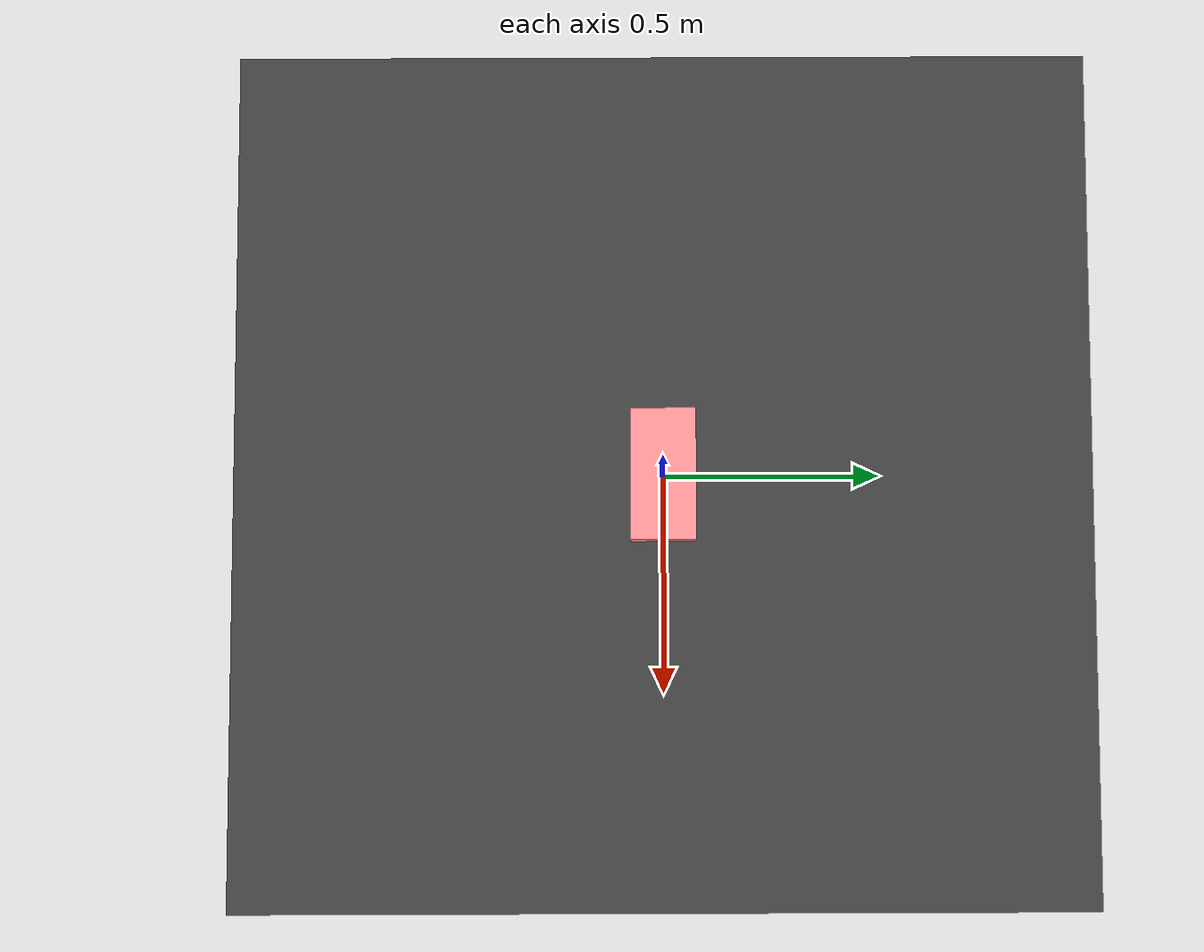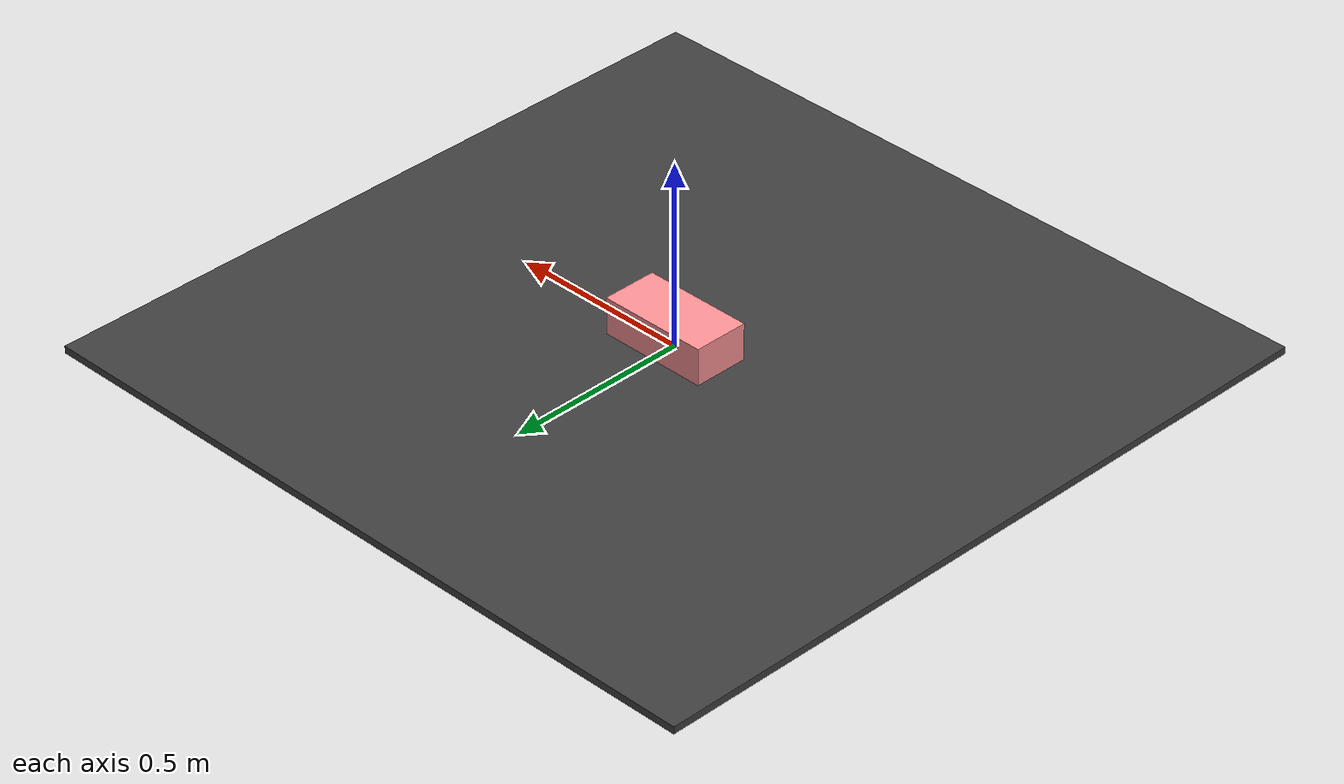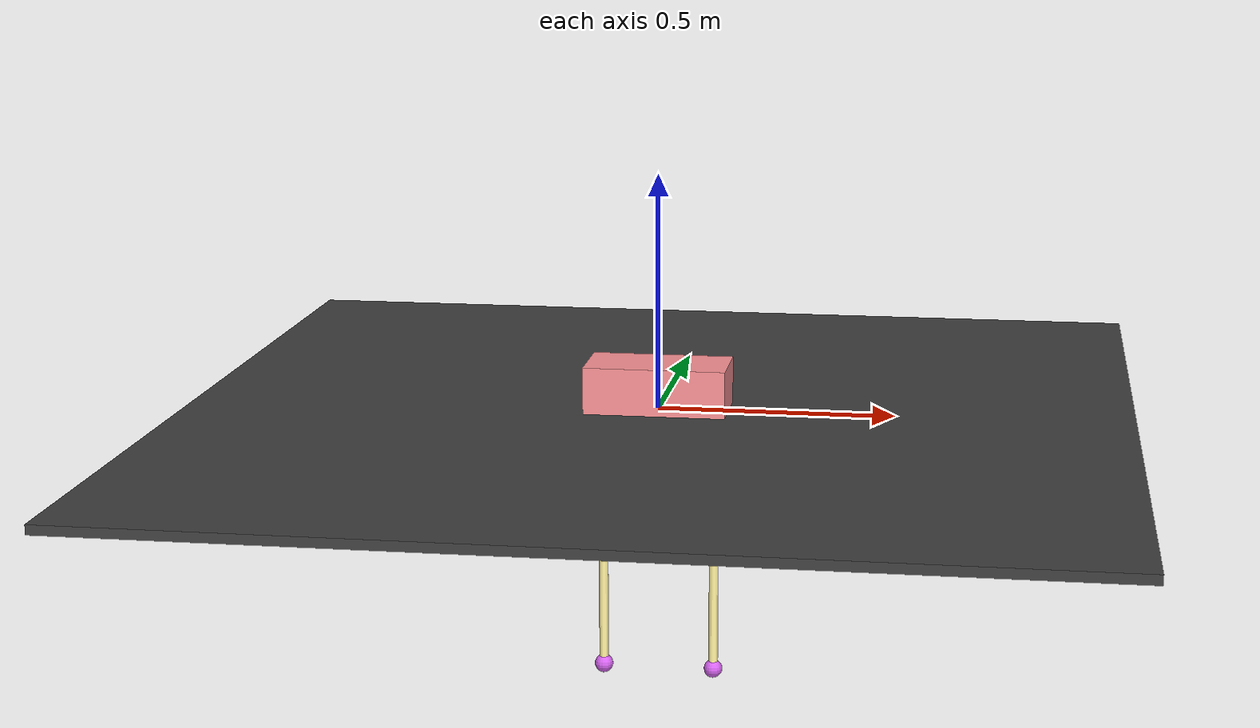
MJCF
<!-- 3D hermes in 2d plane -->
<mujoco model="Hermes">
    <compiler angle="radian" coordinate="local" inertiafromgeom="auto"/>

    <option gravity="0 0 -9.8" timestep="0.001" collision="predefined" cone="elliptic" o_solref="0.002 1">
        <flag override="enable"/>
    </option>

    <visual>
    </visual>

    <asset>
        <texture type="skybox" builtin="gradient" width="100" height="100" rgb1="0.4 0.6 0.8" rgb2="0 0 0"/>
        <texture type="2d" name="plane" builtin="checker" rgb1="0.2 0.2 0.2" rgb2="0.3 0.3 0.3" width="100"
                 height="100"/>
        <material name="plane" reflectance="0.0" texture="plane" texrepeat="1 1" texuniform="true"/>
    </asset>

    <worldbody>
        <light mode="trackcom" pos="0 0 5" dir="0 0 -1"/>
        <light directional="true" pos="0 0 10" dir="0 0 -1" diffuse="0.2 0.2 0.2" specular="0 0 0"/>
        <!--geom name="floor" pos="0 0 0" size="50 50 50" type="plane" material="plane" condim="3" conaffinity="15"/-->
        <geom name="floor" pos="0 0 0" size="50 50 50" type="plane" rgba="1 1 1 0" condim="3" conaffinity="15"/>

        <body name="torso" pos="0 0 0">
            <camera name="track" pos="0 -3 0" zaxis="0 -1 0" mode="track"/>
            <geom type="box" size="0.15 0.075 0.1" rgba="0.992 0.576 0.588 1" mass="5" pos="0 0 0"/>
            <joint name="root_x" type="slide" axis="1 0 0" pos="0 0 0" limited="false" damping="0" armature="0"
                   stiffness="0"/>
            <joint name="root_z" type="slide" axis="0 0 1" pos="0 0 0" limited="false" damping="0" armature="0"
                   stiffness="0"/>
            <joint name="root_rotation" type="hinge" axis="0 1 0" pos="0 0 0" limited="false" damping="0" armature="0"
                   stiffness="0"/>

            <!-- left leg -->
            <body name="left1" pos="-0.12 0 0">
                <geom type="cylinder" fromto="-0.015 0 0 0.015 0 0" size="0.07" mass="0.2" rgba="0.686 1 0.616 1"/>
                <joint name="hip1_l" type="hinge" axis="0 1 0" pos="0 0 0" limited="false" damping="0.1" stiffness="0"
                       armature="0.0001"/>
                <body name="left2" pos="0 0 0">
                    <geom type="capsule" fromto="0 0 0 0 0 -0.3" size="0.015" mass="0.05" rgba="0.686 1 0.616 1"/>
                    <joint name="hip2_l" type="hinge" axis="1 0 0" pos="0 0 0" limited="false" damping="0.1"
                           stiffness="0" armature="0.0001"/>
                    <body name="left3" pos="0 0 -0.3">
                        <geom type="capsule" fromto="0 0 0 0 0 -0.28" size="0.01" mass="0.03" rgba="1 0.945 0.620 1"/>
                        <joint name="knee_l" type="hinge" axis="1 0 0" pos="0 0 0" limited="false" damping="0.1"
                               stiffness="0" armature="0.0001"/>
                        <body name="left4" pos="0 0 -0.28">
                            <geom type="sphere" pos="0 0 0" size="0.02" mass="0.01" rgba="0.839 0.388 0.937 1"
                                  friction="100 100 100" name="foot_l"/>
                        </body>
                    </body>
                </body>
            </body>

            <!-- right leg -->
            <body name="right1" pos="0.12 0 0">
                <geom type="cylinder" fromto="-0.015 0 0 0.015 0 0" size="0.07" mass="0.2" rgba="0.686 1 0.616 1"/>
                <joint name="hip1_r" type="hinge" axis="0 1 0" pos="0 0 0" limited="false" damping="0.1" stiffness="0"
                       armature="0.0001"/>
                <body name="right2" pos="0 0 0">
                    <geom type="capsule" fromto="0 0 0 0 0 -0.3" size="0.015" mass="0.05" rgba="0.686 1 0.616 1"/>
                    <joint name="hip2_r" type="hinge" axis="1 0 0" pos="0 0 0" limited="false" damping="0.1"
                           stiffness="0" armature="0.0001"/>
                    <body name="right3" pos="0 0 -0.3">
                        <geom type="capsule" fromto="0 0 0 0 0 -0.28" size="0.01" mass="0.03" rgba="1 0.945 0.620 1"/>
                        <joint name="knee_r" type="hinge" axis="1 0 0" pos="0 0 0" limited="false" damping="0.1"
                               stiffness="0" armature="0.0001"/>
                        <body name="right4" pos="0 0 -0.28">
                            <geom type="sphere" pos="0 0 0" size="0.02" mass="0.01" rgba="0.839 0.388 0.937 1"
                                  friction="100 100 100" name="foot_r"/>
                        </body>
                    </body>
                </body>
            </body>

        </body>

        <body name="seesaw" pos="0 0 -0.01">
            <geom type="box" size="1 1 0.01" mass="1" material="plane" condim="3" conaffinity="15" name="seesaw"/>
            <joint name="rotation_y" type="hinge" axis="0 1 0" pos="0 0 0" limited="false" damping="0.2" armature="0"
                   stiffness="30"/>
        </body>

    </worldbody>

    <actuator>
        <motor joint="hip1_l" gear="1" name="hip1_l"/>
        <motor joint="hip2_l" gear="1" name="hip2_l"/>
        <motor joint="knee_l" gear="1" name="knee_l"/>
        <motor joint="hip1_r" gear="1" name="hip1_r"/>
        <motor joint="hip2_r" gear="1" name="hip2_r"/>
        <motor joint="knee_r" gear="1" name="knee_r"/>
        <motor joint="rotation_y" gear="1" name="seesaw_r"/>
    </actuator>

    <contact>
        <!--pair geom1="floor" geom2="foot_l" condim="3" friction="0.5 0.5 0.5" solref="0.002 1"/-->
        <!--pair geom1="floor" geom2="foot_r" condim="3" friction="0.5 0.5 0.5" solref="0.002 1"/-->
        <pair geom1="seesaw" geom2="foot_r" condim="3" friction="0.5 0.5 0.5" solref="0.002 1"/>
        <pair geom1="seesaw" geom2="foot_l" condim="3" friction="0.5 0.5 0.5" solref="0.002 1"/>
    </contact>

</mujoco>
